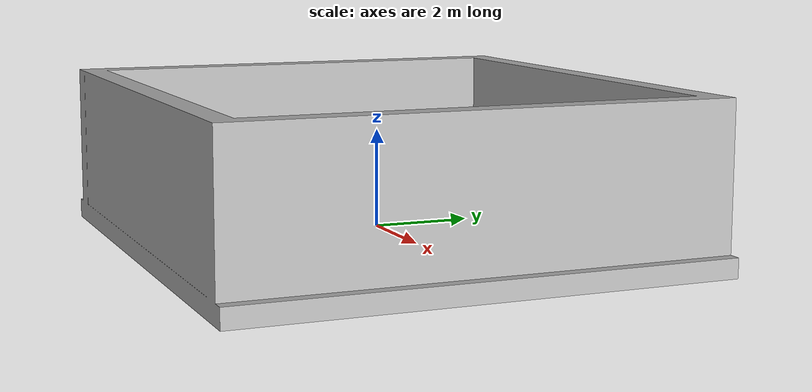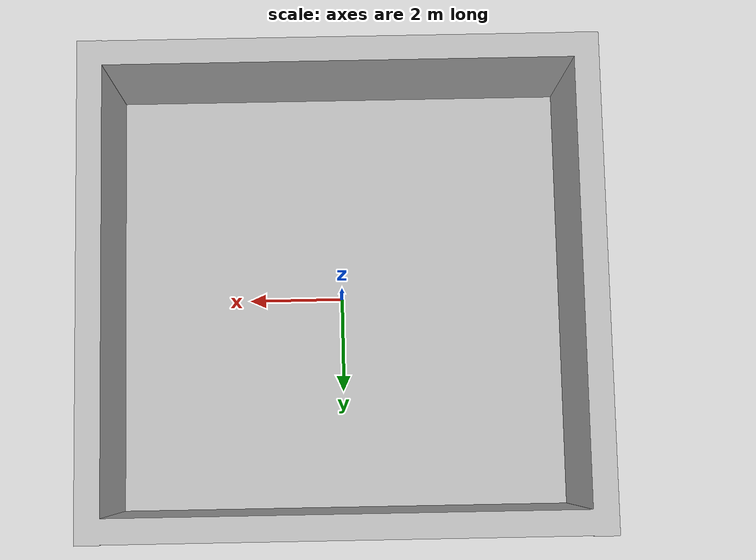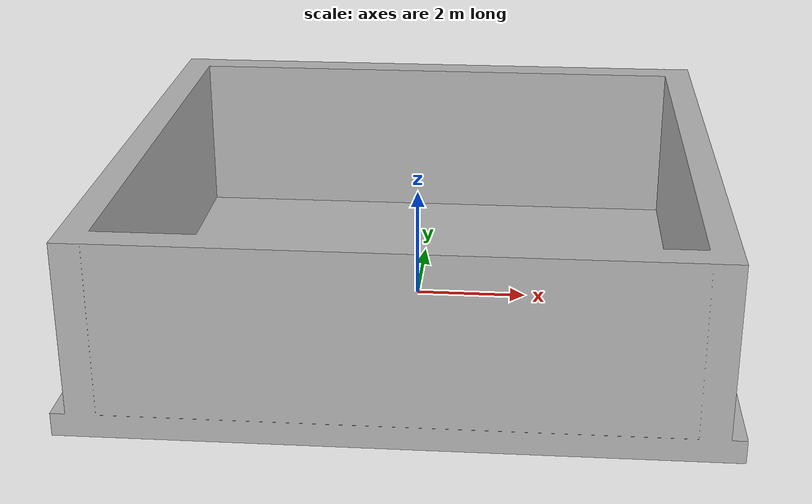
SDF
<?xml version="1.0"?>
<sdf version="1.6">
  <model name="Textured Walls">
    <pose>0 0 0 0 0 0</pose>
    <static>true</static>
    <link name="link">
      <collision name="collision">
        <geometry>
          <mesh>
            <uri>model://Textured Walls/meshes/textured_walls.dae</uri>
         </mesh>
        </geometry>
      </collision>
      <visual name="visual">
        <geometry>
          <mesh>
            <uri>model://Textured Walls/meshes/textured_walls.dae</uri>
         </mesh>
        </geometry>
      </visual>
    </link>
  </model>
 </sdf>
